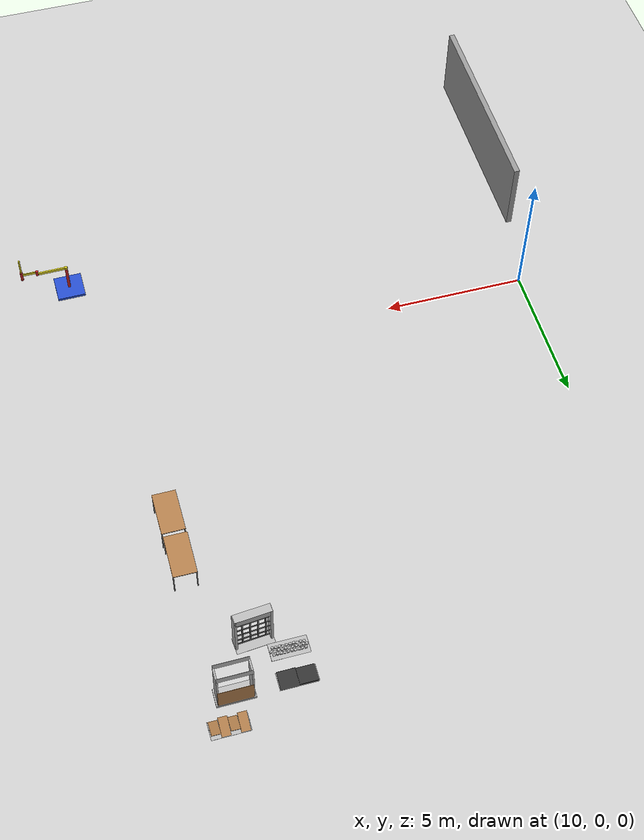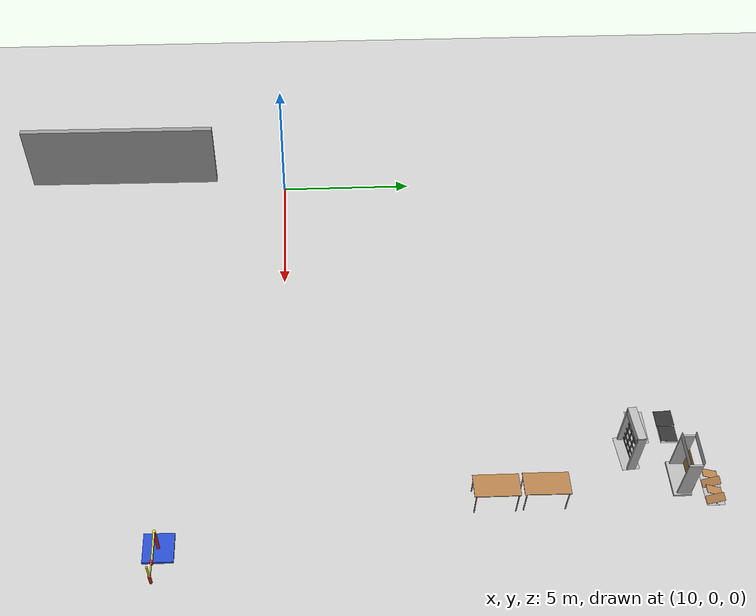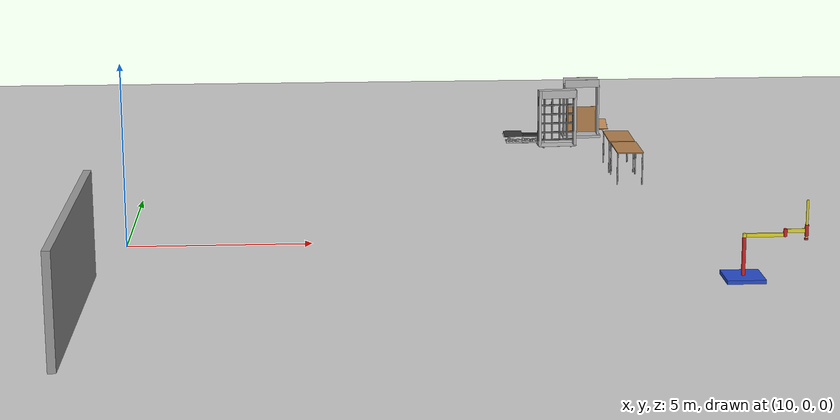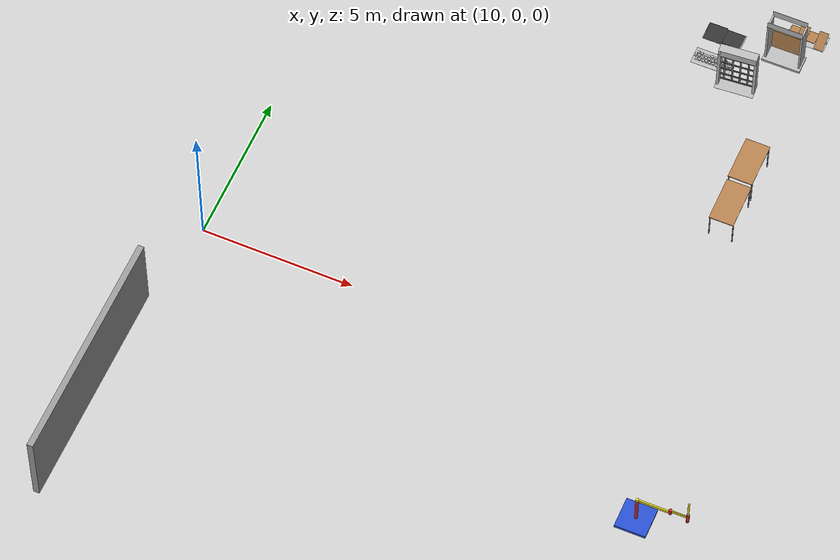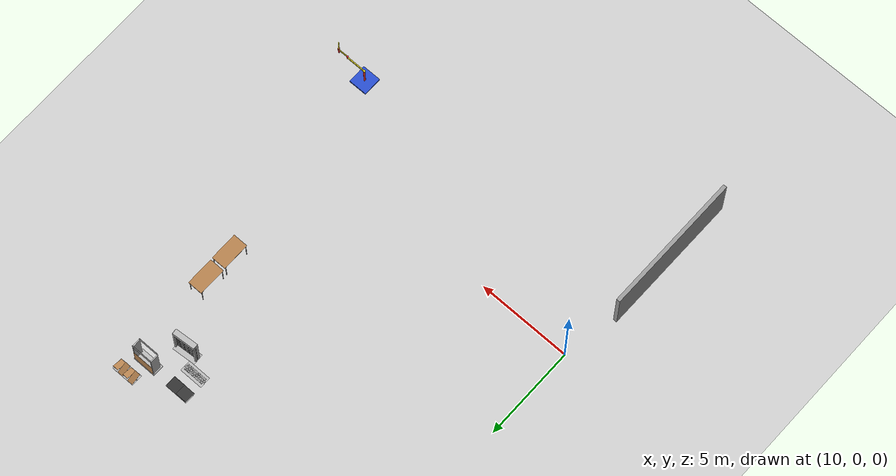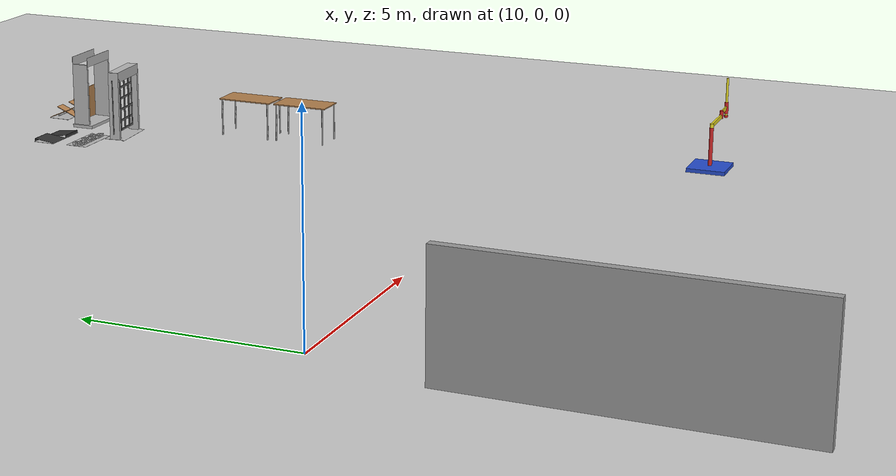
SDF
<sdf version="1.4">
 <world name="default">
  <light name="sun" type="directional">
   <pose>0 0 10 0 -0 0</pose>
   <diffuse>0.8 0.8 0.8 1</diffuse>
   <specular>0.2 0.2 0.2 1</specular>
   <attenuation>
    <range>1000</range>
    <constant>0.9</constant>
    <linear>0.01</linear>
    <quadratic>0.001</quadratic>
   </attenuation>
   <direction>-0.5 0.1 -0.9</direction>
  </light>
  <model name="ground_plane">
   <static>1</static>
   <link name="link">
    <collision name="collision">
     <geometry><plane><normal>0 0 1</normal><size>100 100</size></plane></geometry>
     <surface><friction><ode><mu>100</mu><mu2>50</mu2></ode></friction></surface>
    </collision>
    <visual name="visual">
     <cast_shadows>0</cast_shadows>
     <geometry><plane><normal>0 0 1</normal><size>100 100</size></plane></geometry>
     <material>
      <script><uri>file://media/materials/scripts/gazebo.material</uri><name>Gazebo/Grey</name></script>
     </material>
    </visual>
    <velocity_decay><linear>0</linear><angular>0</angular></velocity_decay>
   </link>
  </model>
  <physics type="ode">
   <max_step_size>0.001</max_step_size>
   <real_time_factor>1</real_time_factor>
   <real_time_update_rate>1000</real_time_update_rate>
   <gravity>0 0 -9.8</gravity>
  </physics>
  <scene><ambient>0.4 0.4 0.4 1</ambient><background>0.7 0.7 0.7 1</background><shadows>1</shadows></scene>
  <spherical_coordinates>
   <surface_model>EARTH_WGS84</surface_model>
   <latitude_deg>0</latitude_deg>
   <longitude_deg>0</longitude_deg>
   <elevation>0</elevation>
   <heading_deg>0</heading_deg>
  </spherical_coordinates>
  <model name="grey_wall">
   <static>1</static>
   <link name="link">
    <pose>0 0 1.4 0 -0 0</pose>
    <collision name="collision"><geometry><box><size>7.5 0.2 2.8</size></box></geometry></collision>
    <visual name="visual">
     <cast_shadows>0</cast_shadows>
     <geometry><box><size>7.5 0.2 2.8</size></box></geometry>
     <material>
      <script>
       <uri>model://grey_wall/materials/scripts</uri>
       <uri>model://grey_wall/materials/textures</uri>
       <name>vrc/grey_wall</name>
      </script>
     </material>
    </visual>
    <velocity_decay><linear>0</linear><angular>0</angular></velocity_decay>
   </link>
   <pose>9.36447 -6.53474 0 0 0 -1.57522</pose>
  </model>
  <model name="table">
   <static>1</static>
   <link name="link">
    <collision name="surface">
     <pose>0 0 1 0 -0 0</pose>
     <geometry><box><size>1.5 0.8 0.03</size></box></geometry>
     <surface><friction><ode><mu>0.6</mu><mu2>0.6</mu2></ode></friction></surface>
    </collision>
    <visual name="visual1">
     <pose>0 0 1 0 -0 0</pose>
     <geometry><box><size>1.5 0.8 0.03</size></box></geometry>
     <material>
      <script><uri>file://media/materials/scripts/gazebo.material</uri><name>Gazebo/Wood</name></script>
     </material>
    </visual>
    <collision name="front_left_leg">
     <pose>0.68 0.38 0.5 0 -0 0</pose>
     <geometry><cylinder><radius>0.02</radius><length>1</length></cylinder></geometry>
    </collision>
    <visual name="front_left_leg">
     <pose>0.68 0.38 0.5 0 -0 0</pose>
     <geometry><cylinder><radius>0.02</radius><length>1</length></cylinder></geometry>
     <material>
      <script><uri>file://media/materials/scripts/gazebo.material</uri><name>Gazebo/Grey</name></script>
     </material>
    </visual>
    <collision name="front_right_leg">
     <pose>0.68 -0.38 0.5 0 -0 0</pose>
     <geometry><cylinder><radius>0.02</radius><length>1</length></cylinder></geometry>
    </collision>
    <visual name="front_right_leg">
     <pose>0.68 -0.38 0.5 0 -0 0</pose>
     <geometry><cylinder><radius>0.02</radius><length>1</length></cylinder></geometry>
     <material>
      <script><uri>file://media/materials/scripts/gazebo.material</uri><name>Gazebo/Grey</name></script>
     </material>
    </visual>
    <collision name="back_right_leg">
     <pose>-0.68 -0.38 0.5 0 -0 0</pose>
     <geometry><cylinder><radius>0.02</radius><length>1</length></cylinder></geometry>
    </collision>
    <visual name="back_right_leg">
     <pose>-0.68 -0.38 0.5 0 -0 0</pose>
     <geometry><cylinder><radius>0.02</radius><length>1</length></cylinder></geometry>
     <material>
      <script><uri>file://media/materials/scripts/gazebo.material</uri><name>Gazebo/Grey</name></script>
     </material>
    </visual>
    <collision name="back_left_leg">
     <pose>-0.68 0.38 0.5 0 -0 0</pose>
     <geometry><cylinder><radius>0.02</radius><length>1</length></cylinder></geometry>
    </collision>
    <visual name="back_left_leg">
     <pose>-0.68 0.38 0.5 0 -0 0</pose>
     <geometry><cylinder><radius>0.02</radius><length>1</length></cylinder></geometry>
     <material>
      <script><uri>file://media/materials/scripts/gazebo.material</uri><name>Gazebo/Grey</name></script>
     </material>
    </visual>
    <velocity_decay><linear>0</linear><angular>0</angular></velocity_decay>
   </link>
   <pose>24.6223 6.79371 0 0 0 -1.56769</pose>
  </model>
  <model name="table_1">
   <static>1</static>
   <link name="link">
    <collision name="surface">
     <pose>0 0 1 0 -0 0</pose>
     <geometry><box><size>1.5 0.8 0.03</size></box></geometry>
     <surface><friction><ode><mu>0.6</mu><mu2>0.6</mu2></ode></friction></surface>
    </collision>
    <visual name="visual1">
     <pose>0 0 1 0 -0 0</pose>
     <geometry><box><size>1.5 0.8 0.03</size></box></geometry>
     <material>
      <script><uri>file://media/materials/scripts/gazebo.material</uri><name>Gazebo/Wood</name></script>
     </material>
    </visual>
    <collision name="front_left_leg">
     <pose>0.68 0.38 0.5 0 -0 0</pose>
     <geometry><cylinder><radius>0.02</radius><length>1</length></cylinder></geometry>
    </collision>
    <visual name="front_left_leg">
     <pose>0.68 0.38 0.5 0 -0 0</pose>
     <geometry><cylinder><radius>0.02</radius><length>1</length></cylinder></geometry>
     <material>
      <script><uri>file://media/materials/scripts/gazebo.material</uri><name>Gazebo/Grey</name></script>
     </material>
    </visual>
    <collision name="front_right_leg">
     <pose>0.68 -0.38 0.5 0 -0 0</pose>
     <geometry><cylinder><radius>0.02</radius><length>1</length></cylinder></geometry>
    </collision>
    <visual name="front_right_leg">
     <pose>0.68 -0.38 0.5 0 -0 0</pose>
     <geometry><cylinder><radius>0.02</radius><length>1</length></cylinder></geometry>
     <material>
      <script><uri>file://media/materials/scripts/gazebo.material</uri><name>Gazebo/Grey</name></script>
     </material>
    </visual>
    <collision name="back_right_leg">
     <pose>-0.68 -0.38 0.5 0 -0 0</pose>
     <geometry><cylinder><radius>0.02</radius><length>1</length></cylinder></geometry>
    </collision>
    <visual name="back_right_leg">
     <pose>-0.68 -0.38 0.5 0 -0 0</pose>
     <geometry><cylinder><radius>0.02</radius><length>1</length></cylinder></geometry>
     <material>
      <script><uri>file://media/materials/scripts/gazebo.material</uri><name>Gazebo/Grey</name></script>
     </material>
    </visual>
    <collision name="back_left_leg">
     <pose>-0.68 0.38 0.5 0 -0 0</pose>
     <geometry><cylinder><radius>0.02</radius><length>1</length></cylinder></geometry>
    </collision>
    <visual name="back_left_leg">
     <pose>-0.68 0.38 0.5 0 -0 0</pose>
     <geometry><cylinder><radius>0.02</radius><length>1</length></cylinder></geometry>
     <material>
      <script><uri>file://media/materials/scripts/gazebo.material</uri><name>Gazebo/Grey</name></script>
     </material>
    </visual>
    <velocity_decay><linear>0</linear><angular>0</angular></velocity_decay>
   </link>
   <pose>24.6027 8.40542 0 0 0 -1.57795</pose>
  </model>
  <model name="frc2016_chevaldefrise">
   <link name="base">
    <inertial>
     <mass>10</mass>
     <pose>0 0 0.15672 0 -0 0</pose>
     <inertia><ixx>0.380221</ixx><ixy>0</ixy><ixz>0</ixz><iyy>1.43365</iyy><iyz>0</iyz><izz>1.64745</izz></inertia>
    </inertial>
    <visual name="platform">
     <pose>0 0 0.06968 0 -0 0</pose>
     <geometry><box><size>1.27 0.5969 0.003175</size></box></geometry>
    </visual>
    <collision name="platform">
     <pose>0 0 0.06968 0 -0 0</pose>
     <geometry><box><size>1.27 0.5969 0.003175</size></box></geometry>
    </collision>
    <visual name="bar">
     <pose>0 0 0.16855 0 1.5707 0</pose>
     <geometry><cylinder><radius>0.02108</radius><length>1.273</length></cylinder></geometry>
    </visual>
    <collision name="bar">
     <pose>0 0 0.16855 0 1.5707 0</pose>
     <geometry><cylinder><radius>0.02108</radius><length>1.27</length></cylinder></geometry>
    </collision>
    <visual name="castor1">
     <pose>-0.45653 -0.16581 0.03175 0 -0 0</pose>
     <geometry><sphere><radius>0.03175</radius></sphere></geometry>
    </visual>
    <collision name="castor1">
     <pose>-0.45653 -0.16581 0.03175 0 -0 0</pose>
     <geometry><sphere><radius>0.03175</radius></sphere></geometry>
    </collision>
    <visual name="castor2">
     <pose>-0.27855 0.21408 0.03175 0 -0 0</pose>
     <geometry><sphere><radius>0.03175</radius></sphere></geometry>
    </visual>
    <collision name="castor2">
     <pose>-0.27855 0.21408 0.03175 0 -0 0</pose>
     <geometry><sphere><radius>0.03175</radius></sphere></geometry>
    </collision>
    <visual name="castor3">
     <pose>0.28191 0.21419 0.03175 0 -0 0</pose>
     <geometry><sphere><radius>0.03175</radius></sphere></geometry>
    </visual>
    <collision name="castor3">
     <pose>0.28191 0.21419 0.03175 0 -0 0</pose>
     <geometry><sphere><radius>0.03175</radius></sphere></geometry>
    </collision>
    <visual name="castor4">
     <pose>0.45965 -0.16602 0.03175 0 -0 0</pose>
     <geometry><sphere><radius>0.03175</radius></sphere></geometry>
    </visual>
    <collision name="castor4">
     <pose>0.45965 -0.16602 0.03175 0 -0 0</pose>
     <geometry><sphere><radius>0.03175</radius></sphere></geometry>
    </collision>
    <velocity_decay><linear>0</linear><angular>0</angular></velocity_decay>
   </link>
   <link name="slant1">
    <pose>-0.4572 0.01307 0.1997 -0.39732 0 0</pose>
    <inertial>
     <pose>0 0.1 0 0 -0 0</pose>
     <mass>2</mass>
     <inertia>
      <ixx>0.0606857</ixx>
      <ixy>0</ixy>
      <ixz>0</ixz>
      <iyy>0.0148723</iyy>
      <iyz>0</iyz>
      <izz>0.0755042</izz>
     </inertia>
    </inertial>
    <visual name="visual">
     <geometry><box><size>0.29845 0.593285 0.0127</size></box></geometry>
     <material><script><name>Gazebo/WoodFloor</name><uri>__default__</uri></script></material>
    </visual>
    <collision name="collision"><geometry><box><size>0.29845 0.593285 0.0127</size></box></geometry></collision>
    <velocity_decay><linear>0</linear><angular>0</angular></velocity_decay>
   </link>
   <link name="slant2">
    <pose>-0.1524 -0.01307 0.1997 0.39732 -0 0</pose>
    <inertial>
     <mass>2</mass>
     <pose>0 -0.1 0 0 -0 0</pose>
     <inertia>
      <ixx>0.0606857</ixx>
      <ixy>0</ixy>
      <ixz>0</ixz>
      <iyy>0.0148723</iyy>
      <iyz>0</iyz>
      <izz>0.0755042</izz>
     </inertia>
    </inertial>
    <visual name="visual">
     <geometry><box><size>0.29845 0.593285 0.0127</size></box></geometry>
     <material><script><name>Gazebo/WoodFloor</name><uri>__default__</uri></script></material>
    </visual>
    <collision name="collision"><geometry><box><size>0.29845 0.593285 0.0127</size></box></geometry></collision>
    <velocity_decay><linear>0</linear><angular>0</angular></velocity_decay>
   </link>
   <link name="slant3">
    <pose>0.1524 0.01307 0.1997 -0.39732 0 0</pose>
    <inertial>
     <pose>0 0.1 0 0 -0 0</pose>
     <mass>2</mass>
     <inertia>
      <ixx>0.0606857</ixx>
      <ixy>0</ixy>
      <ixz>0</ixz>
      <iyy>0.0148723</iyy>
      <iyz>0</iyz>
      <izz>0.0755042</izz>
     </inertia>
    </inertial>
    <visual name="visual">
     <geometry><box><size>0.29845 0.593285 0.0127</size></box></geometry>
     <material><script><name>Gazebo/WoodFloor</name><uri>__default__</uri></script></material>
    </visual>
    <collision name="collision"><geometry><box><size>0.29845 0.593285 0.0127</size></box></geometry></collision>
    <velocity_decay><linear>0</linear><angular>0</angular></velocity_decay>
   </link>
   <link name="slant4">
    <pose>0.4572 -0.01307 0.1997 0.39732 -0 0</pose>
    <inertial>
     <pose>0 -0.1 0 0 -0 0</pose>
     <mass>2</mass>
     <inertia>
      <ixx>0.0606857</ixx>
      <ixy>0</ixy>
      <ixz>0</ixz>
      <iyy>0.0148723</iyy>
      <iyz>0</iyz>
      <izz>0.0755042</izz>
     </inertia>
    </inertial>
    <visual name="visual">
     <geometry><box><size>0.29845 0.593285 0.0127</size></box></geometry>
     <material><script><name>Gazebo/WoodFloor</name><uri>__default__</uri></script></material>
    </visual>
    <collision name="collision"><geometry><box><size>0.29845 0.593285 0.0127</size></box></geometry></collision>
    <velocity_decay><linear>0</linear><angular>0</angular></velocity_decay>
   </link>
   <joint name="slant1_joint" type="revolute">
    <parent>base</parent>
    <child>slant1</child>
    <axis><xyz>1 0 0</xyz><limit><lower>0</lower><upper>1.5707</upper></limit></axis>
   </joint>
   <joint name="slant2_joint" type="revolute">
    <parent>base</parent>
    <child>slant2</child>
    <axis><xyz>1 0 0</xyz><limit><lower>-1.5707</lower><upper>0</upper></limit></axis>
   </joint>
   <joint name="slant3_joint" type="revolute">
    <parent>base</parent>
    <child>slant3</child>
    <axis><xyz>1 0 0</xyz><limit><lower>0</lower><upper>1.5707</upper></limit></axis>
   </joint>
   <joint name="slant4_joint" type="revolute">
    <parent>base</parent>
    <child>slant4</child>
    <axis><xyz>1 0 0</xyz><limit><lower>-1.5707</lower><upper>0</upper></limit></axis>
   </joint>
   <pose>24.4049 14 -0 0 -0 0</pose>
   <static>0</static>
  </model>
  <model name="frc2016_drawbridge">
   <link name="base">
    <inertial>
     <mass>10</mass>
     <pose>0 0 1 0 -0 0</pose>
     <inertia><ixx>3.64907</ixx><ixy>0</ixy><ixz>0</ixz><iyy>4.67075</iyy><iyz>0</iyz><izz>1.66649</izz></inertia>
    </inertial>
    <visual name="platform">
     <pose>0 0 0.0425 0 -0 0</pose>
     <geometry><box><size>1.27 0.5969 0.085</size></box></geometry>
    </visual>
    <collision name="platform">
     <pose>0 0 0.0425 0 -0 0</pose>
     <geometry><box><size>1.27 0.5969 0.085</size></box></geometry>
    </collision>
    <visual name="right_wall">
     <pose>0.55879 0.04444 0.889 0 -0 0</pose>
     <geometry><box><size>0.05715 0.45698 1.77165</size></box></geometry>
    </visual>
    <collision name="right_wall">
     <pose>0.55879 0.04444 0.889 0 -0 0</pose>
     <geometry><box><size>0.05715 0.45698 1.77165</size></box></geometry>
    </collision>
    <visual name="left_wall">
     <pose>-0.55879 0.04444 0.889 0 -0 0</pose>
     <geometry><box><size>0.05715 0.45698 1.77165</size></box></geometry>
    </visual>
    <collision name="left_wall">
     <pose>-0.55879 0.04444 0.889 0 -0 0</pose>
     <geometry><box><size>0.05715 0.45698 1.77165</size></box></geometry>
    </collision>
    <visual name="front_upper_wall">
     <pose>0 0.27611 1.84286 0 -0 0</pose>
     <geometry><box><size>1.1557 0.006347 0.254</size></box></geometry>
    </visual>
    <collision name="front_upper_wall">
     <pose>0 0.27611 1.84286 0 -0 0</pose>
     <geometry><box><size>1.1557 0.006347 0.254</size></box></geometry>
    </collision>
    <visual name="back_upper_wall">
     <pose>0 -0.18722 1.84286 0 -0 0</pose>
     <geometry><box><size>1.1557 0.006347 0.254</size></box></geometry>
    </visual>
    <collision name="back_upper_wall">
     <pose>0 -0.18722 1.84286 0 -0 0</pose>
     <geometry><box><size>1.1557 0.006347 0.254</size></box></geometry>
    </collision>
    <velocity_decay><linear>0</linear><angular>0</angular></velocity_decay>
   </link>
   <link name="bridge">
    <pose>0 0.28245 0.50577 0 -0 0</pose>
    <inertial>
     <mass>2</mass>
     <pose>0 -0.28245 -0.50577 0 -0 0</pose>
     <inertia>
      <ixx>0.139361</ixx>
      <ixy>0</ixy>
      <ixz>0</ixz>
      <iyy>0.357088</iyy>
      <iyz>0</iyz>
      <izz>0.217741</izz>
     </inertia>
    </inertial>
    <visual name="visual">
     <geometry><box><size>1.14298 0.006347 0.9144</size></box></geometry>
     <material><script><name>Gazebo/WoodFloor</name><uri>__default__</uri></script></material>
    </visual>
    <collision name="collision"><geometry><box><size>1.14298 0.006347 0.9144</size></box></geometry></collision>
    <velocity_decay><linear>0</linear><angular>0</angular></velocity_decay>
   </link>
   <joint name="bridge_joint" type="revolute">
    <pose>0 0 -0.4172 0 -0 0</pose>
    <parent>base</parent>
    <child>bridge</child>
    <axis><xyz>1 0 0</xyz><limit><lower>-2</lower><upper>0</upper></limit></axis>
   </joint>
   <pose>23.9997 12.9993 0 0 -0 0.002151</pose>
   <static>0</static>
  </model>
  <model name="frc2016_portcullis">
   <link name="base">
    <inertial>
     <mass>50</mass>
     <pose>0 0 1.02941 0 -0 0</pose>
     <inertia><ixx>3.81711</ixx><ixy>0</ixy><ixz>0</ixz><iyy>4.87698</iyy><iyz>0</iyz><izz>1.6283</izz></inertia>
    </inertial>
    <visual name="platform">
     <pose>0 0 0.07284 0 -0 0</pose>
     <geometry><box><size>1.27 0.5842 0.003175</size></box></geometry>
    </visual>
    <collision name="platform">
     <pose>0 0 0.07284 0 -0 0</pose>
     <geometry><box><size>1.27 0.5842 0.003175</size></box></geometry>
    </collision>
    <visual name="left_column">
     <pose>0.59284 0 0.99042 0 -0 0</pose>
     <geometry><box><size>0.08375 0.28575 1.83198</size></box></geometry>
    </visual>
    <collision name="left_column">
     <pose>0.59284 0 0.99042 0 -0 0</pose>
     <geometry><box><size>0.08375 0.28575 1.83198</size></box></geometry>
    </collision>
    <visual name="right_column">
     <pose>-0.57759 0 0.99042 0 -0 0</pose>
     <geometry><box><size>0.08375 0.28575 1.83198</size></box></geometry>
    </visual>
    <collision name="right_column">
     <pose>-0.57759 0 0.99042 0 -0 0</pose>
     <geometry><box><size>0.08375 0.28575 1.83198</size></box></geometry>
    </collision>
    <visual name="top">
     <pose>-0.00034 0 1.77722 0 -0 0</pose>
     <geometry><box><size>1.22962 0.28575 0.26657</size></box></geometry>
    </visual>
    <collision name="top">
     <pose>-0.00034 0 1.77722 0 -0 0</pose>
     <geometry><box><size>1.22962 0.28575 0.26657</size></box></geometry>
    </collision>
    <visual name="castor1">
     <pose>-0.45651 -0.16234 0.03272 0 -0 0</pose>
     <geometry><sphere><radius>0.03272</radius></sphere></geometry>
    </visual>
    <collision name="castor1">
     <pose>-0.45651 -0.16234 0.03272 0 -0 0</pose>
     <geometry><sphere><radius>0.03272</radius></sphere></geometry>
    </collision>
    <visual name="castor2">
     <pose>-0.27883 0.21836 0.03272 0 -0 0</pose>
     <geometry><sphere><radius>0.03272</radius></sphere></geometry>
    </visual>
    <collision name="castor2">
     <pose>-0.27883 0.21836 0.03272 0 -0 0</pose>
     <geometry><sphere><radius>0.03272</radius></sphere></geometry>
    </collision>
    <visual name="castor3">
     <pose>0.28083 0.21906 0.03272 0 -0 0</pose>
     <geometry><sphere><radius>0.03272</radius></sphere></geometry>
    </visual>
    <collision name="castor3">
     <pose>0.28083 0.21906 0.03272 0 -0 0</pose>
     <geometry><sphere><radius>0.03272</radius></sphere></geometry>
    </collision>
    <visual name="castor4">
     <pose>0.45871 -0.16186 0.03272 0 -0 0</pose>
     <geometry><sphere><radius>0.03272</radius></sphere></geometry>
    </visual>
    <collision name="castor4">
     <pose>0.45871 -0.16186 0.03272 0 -0 0</pose>
     <geometry><sphere><radius>0.03272</radius></sphere></geometry>
    </collision>
    <velocity_decay><linear>0</linear><angular>0</angular></velocity_decay>
   </link>
   <link name="gate">
    <pose>-0.0287 0.02885 0.93327 0 -0 0</pose>
    <inertial>
     <mass>2</mass>
     <inertia><ixx>3.81711</ixx><ixy>0</ixy><ixz>0</ixz><iyy>4.87698</iyy><iyz>0</iyz><izz>1.6283</izz></inertia>
    </inertial>
    <collision name="collision"><geometry><box><size>1.1938 0.02496 1.45732</size></box></geometry></collision>
    <visual name="horz_1">
     <pose>0 0 -0.70326 0 -0 0</pose>
     <geometry><box><size>1.1938 0.02496 0.0508</size></box></geometry>
     <material><ambient>0.4 0.4 0.4 1</ambient><diffuse>0.4 0.4 0.4 1</diffuse></material>
    </visual>
    <visual name="horz_2">
     <pose>0 0 -0.44926 0 -0 0</pose>
     <geometry><box><size>1.1938 0.02496 0.0508</size></box></geometry>
     <material><ambient>0.4 0.4 0.4 1</ambient><diffuse>0.4 0.4 0.4 1</diffuse></material>
    </visual>
    <visual name="horz_3">
     <pose>0 0 -0.14517 0 -0 0</pose>
     <geometry><box><size>1.1938 0.02496 0.0508</size></box></geometry>
     <material><ambient>0.4 0.4 0.4 1</ambient><diffuse>0.4 0.4 0.4 1</diffuse></material>
    </visual>
    <visual name="horz_4">
     <pose>0 0 0.16034 0 -0 0</pose>
     <geometry><box><size>1.1938 0.02496 0.0508</size></box></geometry>
     <material><ambient>0.4 0.4 0.4 1</ambient><diffuse>0.4 0.4 0.4 1</diffuse></material>
    </visual>
    <visual name="horz_5">
     <pose>0 0 0.46514 0 -0 0</pose>
     <geometry><box><size>1.1938 0.02496 0.0508</size></box></geometry>
     <material><ambient>0.4 0.4 0.4 1</ambient><diffuse>0.4 0.4 0.4 1</diffuse></material>
    </visual>
    <visual name="horz_6">
     <pose>0 0 0.72994 0 -0 0</pose>
     <geometry><box><size>1.1938 0.02496 0.0508</size></box></geometry>
     <material><ambient>0.4 0.4 0.4 1</ambient><diffuse>0.4 0.4 0.4 1</diffuse></material>
    </visual>
    <visual name="vert_1">
     <pose>-0.58448 0 0 0 -0 0</pose>
     <geometry><box><size>0.02495 0.02496 1.45732</size></box></geometry>
     <material><ambient>0.4 0.4 0.4 1</ambient><diffuse>0.4 0.4 0.4 1</diffuse></material>
    </visual>
    <visual name="vert_2">
     <pose>-0.38128 0 0 0 -0 0</pose>
     <geometry><box><size>0.0508 0.02496 1.45732</size></box></geometry>
     <material><ambient>0.4 0.4 0.4 1</ambient><diffuse>0.4 0.4 0.4 1</diffuse></material>
    </visual>
    <visual name="vert_3">
     <pose>-0.12728 0 0 0 -0 0</pose>
     <geometry><box><size>0.0508 0.02496 1.45732</size></box></geometry>
     <material><ambient>0.4 0.4 0.4 1</ambient><diffuse>0.4 0.4 0.4 1</diffuse></material>
    </visual>
    <visual name="vert_4">
     <pose>0.12672 0 0 0 -0 0</pose>
     <geometry><box><size>0.0508 0.02496 1.45732</size></box></geometry>
     <material><ambient>0.4 0.4 0.4 1</ambient><diffuse>0.4 0.4 0.4 1</diffuse></material>
    </visual>
    <visual name="vert_5">
     <pose>0.38072 0 0 0 -0 0</pose>
     <geometry><box><size>0.0508 0.02496 1.45732</size></box></geometry>
     <material><ambient>0.4 0.4 0.4 1</ambient><diffuse>0.4 0.4 0.4 1</diffuse></material>
    </visual>
    <visual name="vert_6">
     <pose>0.58392 0 0 0 -0 0</pose>
     <geometry><box><size>0.02495 0.02496 1.45732</size></box></geometry>
     <material><ambient>0.4 0.4 0.4 1</ambient><diffuse>0.4 0.4 0.4 1</diffuse></material>
    </visual>
    <velocity_decay><linear>0</linear><angular>0</angular></velocity_decay>
   </link>
   <joint name="joint" type="prismatic">
    <parent>base</parent>
    <child>gate</child>
    <axis><xyz>0 0 1</xyz><limit><lower>0</lower><upper>1</upper></limit></axis>
   </joint>
   <pose>23.0001 11.4465 0 0 -0 0.080386</pose>
   <static>0</static>
  </model>
  <model name="frc2016_ramparts">
   <static>1</static>
   <link name="link">
    <visual name="platform">
     <pose>0 0 0.06967 0 -0 0</pose>
     <geometry><box><size>1.27 0.5969 0.003175</size></box></geometry>
    </visual>
    <collision name="platform">
     <pose>0 0 0.06967 0 -0 0</pose>
     <geometry><box><size>1.27 0.5969 0.003175</size></box></geometry>
    </collision>
    <visual name="ramp1">
     <pose>0.30472 0.00588 0.1109 -0.13 0 0</pose>
     <geometry><box><size>0.60957 0.588891 0.00462</size></box></geometry>
     <material><ambient>0.2 0.2 0.2 1</ambient><diffuse>0.2 0.2 0.2 1</diffuse></material>
    </visual>
    <collision name="ramp1">
     <pose>0.30472 0.00588 0.1109 -0.13 0 0</pose>
     <geometry><box><size>0.60957 0.588891 0.00462</size></box></geometry>
    </collision>
    <visual name="up1">
     <pose>0.30472 -0.28806 0.11072 0 -0 0</pose>
     <geometry><box><size>0.60957 0.00462 0.07872</size></box></geometry>
     <material><ambient>0.2 0.2 0.2 1</ambient><diffuse>0.2 0.2 0.2 1</diffuse></material>
    </visual>
    <collision name="up1">
     <pose>0.30472 -0.28806 0.11072 0 -0 0</pose>
     <geometry><box><size>0.60957 0.00462 0.07872</size></box></geometry>
    </collision>
    <visual name="ramp2">
     <pose>-0.30472 -0.00619 0.1109 0.13 -0 0</pose>
     <geometry><box><size>0.60957 0.588891 0.00462</size></box></geometry>
     <material><ambient>0.2 0.2 0.2 1</ambient><diffuse>0.2 0.2 0.2 1</diffuse></material>
    </visual>
    <collision name="ramp2">
     <pose>-0.30472 -0.00619 0.1109 0.13 -0 0</pose>
     <geometry><box><size>0.60957 0.588891 0.00462</size></box></geometry>
    </collision>
    <visual name="up2">
     <pose>-0.30472 0.28806 0.11072 0 -0 0</pose>
     <geometry><box><size>0.60957 0.00462 0.07872</size></box></geometry>
     <material><ambient>0.2 0.2 0.2 1</ambient><diffuse>0.2 0.2 0.2 1</diffuse></material>
    </visual>
    <collision name="up2">
     <pose>-0.30472 0.28806 0.11072 0 -0 0</pose>
     <geometry><box><size>0.60957 0.00462 0.07872</size></box></geometry>
    </collision>
    <velocity_decay><linear>0</linear><angular>0</angular></velocity_decay>
   </link>
   <pose>22 13 0 0 -0 0</pose>
  </model>
  <model name="frc2016_roughterrain">
   <static>1</static>
   <link name="link">
    <visual name="platform">
     <pose>0 0 0.08269 0 -0 0</pose>
     <geometry><box><size>1.27 0.5969 0.003175</size></box></geometry>
    </visual>
    <collision name="platform">
     <pose>0 0 0.08269 0 -0 0</pose>
     <geometry><box><size>1.27 0.5969 0.003175</size></box></geometry>
    </collision>
    <visual name="row1_block1_sm">
     <pose>0.51435 0.1143 0.09698 0 -0 0</pose>
     <geometry><box><size>0.0762 0.0762 0.0254</size></box></geometry>
    </visual>
    <collision name="row1_block1_sm">
     <pose>0.51435 0.1143 0.09698 0 -0 0</pose>
     <geometry><box><size>0.0762 0.0762 0.0254</size></box></geometry>
    </collision>
    <visual name="row1_block2_lg">
     <pose>0.40005 0.1143 0.12238 0 -0 0</pose>
     <geometry><box><size>0.0762 0.0762 0.0762</size></box></geometry>
    </visual>
    <collision name="row1_block2_lg">
     <pose>0.40005 0.1143 0.12238 0 -0 0</pose>
     <geometry><box><size>0.0762 0.0762 0.0762</size></box></geometry>
    </collision>
    <visual name="row1_block3_md">
     <pose>0.28575 0.1143 0.10968 0 -0 0</pose>
     <geometry><box><size>0.0762 0.0762 0.0508</size></box></geometry>
    </visual>
    <collision name="row1_block3_md">
     <pose>0.28575 0.1143 0.10968 0 -0 0</pose>
     <geometry><box><size>0.0762 0.0762 0.0508</size></box></geometry>
    </collision>
    <visual name="row1_block4_sm">
     <pose>0.17145 0.1143 0.09698 0 -0 0</pose>
     <geometry><box><size>0.0762 0.0762 0.0254</size></box></geometry>
    </visual>
    <collision name="row1_block4_sm">
     <pose>0.17145 0.1143 0.09698 0 -0 0</pose>
     <geometry><box><size>0.0762 0.0762 0.0254</size></box></geometry>
    </collision>
    <visual name="row1_block5_md">
     <pose>0.05715 0.1143 0.10968 0 -0 0</pose>
     <geometry><box><size>0.0762 0.0762 0.0508</size></box></geometry>
    </visual>
    <collision name="row1_block5_md">
     <pose>0.05715 0.1143 0.10968 0 -0 0</pose>
     <geometry><box><size>0.0762 0.0762 0.0508</size></box></geometry>
    </collision>
    <visual name="row1_block6_lg">
     <pose>-0.05715 0.1143 0.12238 0 -0 0</pose>
     <geometry><box><size>0.0762 0.0762 0.0762</size></box></geometry>
    </visual>
    <collision name="row1_block6_lg">
     <pose>-0.05715 0.1143 0.12238 0 -0 0</pose>
     <geometry><box><size>0.0762 0.0762 0.0762</size></box></geometry>
    </collision>
    <visual name="row1_block7_sm">
     <pose>-0.17145 0.1143 0.09698 0 -0 0</pose>
     <geometry><box><size>0.0762 0.0762 0.0254</size></box></geometry>
    </visual>
    <collision name="row1_block7_sm">
     <pose>-0.17145 0.1143 0.09698 0 -0 0</pose>
     <geometry><box><size>0.0762 0.0762 0.0254</size></box></geometry>
    </collision>
    <visual name="row1_block8_sm">
     <pose>-0.28575 0.1143 0.09698 0 -0 0</pose>
     <geometry><box><size>0.0762 0.0762 0.0254</size></box></geometry>
    </visual>
    <collision name="row1_block8_sm">
     <pose>-0.28575 0.1143 0.09698 0 -0 0</pose>
     <geometry><box><size>0.0762 0.0762 0.0254</size></box></geometry>
    </collision>
    <visual name="row1_block9_md">
     <pose>-0.40005 0.1143 0.10968 0 -0 0</pose>
     <geometry><box><size>0.0762 0.0762 0.0508</size></box></geometry>
    </visual>
    <collision name="row1_block9_md">
     <pose>-0.40005 0.1143 0.10968 0 -0 0</pose>
     <geometry><box><size>0.0762 0.0762 0.0508</size></box></geometry>
    </collision>
    <visual name="row1_block10_lg">
     <pose>-0.51435 0.1143 0.12238 0 -0 0</pose>
     <geometry><box><size>0.0762 0.0762 0.0762</size></box></geometry>
    </visual>
    <collision name="row1_block10_lg">
     <pose>-0.51435 0.1143 0.12238 0 -0 0</pose>
     <geometry><box><size>0.0762 0.0762 0.0762</size></box></geometry>
    </collision>
    <visual name="row2_block1_md">
     <pose>0.5715 0 0.10968 0 -0 0</pose>
     <geometry><box><size>0.0762 0.0762 0.0508</size></box></geometry>
    </visual>
    <collision name="row2_block1_md">
     <pose>0.5715 0 0.10968 0 -0 0</pose>
     <geometry><box><size>0.0762 0.0762 0.0508</size></box></geometry>
    </collision>
    <visual name="row2_block2_sm">
     <pose>0.4572 0 0.09698 0 -0 0</pose>
     <geometry><box><size>0.0762 0.0762 0.0254</size></box></geometry>
    </visual>
    <collision name="row2_block2_sm">
     <pose>0.4572 0 0.09698 0 -0 0</pose>
     <geometry><box><size>0.0762 0.0762 0.0254</size></box></geometry>
    </collision>
    <visual name="row2_block3_lg">
     <pose>0.3429 0 0.12238 0 -0 0</pose>
     <geometry><box><size>0.0762 0.0762 0.0762</size></box></geometry>
    </visual>
    <collision name="row2_block3_lg">
     <pose>0.3429 0 0.12238 0 -0 0</pose>
     <geometry><box><size>0.0762 0.0762 0.0762</size></box></geometry>
    </collision>
    <visual name="row2_block4_md">
     <pose>0.2286 0 0.10968 0 -0 0</pose>
     <geometry><box><size>0.0762 0.0762 0.0508</size></box></geometry>
    </visual>
    <collision name="row2_block4_md">
     <pose>0.2286 0 0.10968 0 -0 0</pose>
     <geometry><box><size>0.0762 0.0762 0.0508</size></box></geometry>
    </collision>
    <visual name="row2_block5_lg">
     <pose>0.1143 0 0.12238 0 -0 0</pose>
     <geometry><box><size>0.0762 0.0762 0.0762</size></box></geometry>
    </visual>
    <collision name="row2_block5_lg">
     <pose>0.1143 0 0.12238 0 -0 0</pose>
     <geometry><box><size>0.0762 0.0762 0.0762</size></box></geometry>
    </collision>
    <visual name="row2_block6_sm">
     <pose>0 0 0.09698 0 -0 0</pose>
     <geometry><box><size>0.0762 0.0762 0.0254</size></box></geometry>
    </visual>
    <collision name="row2_block6_sm">
     <pose>0 0 0.09698 0 -0 0</pose>
     <geometry><box><size>0.0762 0.0762 0.0254</size></box></geometry>
    </collision>
    <visual name="row2_block7_md">
     <pose>-0.1143 0 0.10968 0 -0 0</pose>
     <geometry><box><size>0.0762 0.0762 0.0508</size></box></geometry>
    </visual>
    <collision name="row2_block7_md">
     <pose>-0.1143 0 0.10968 0 -0 0</pose>
     <geometry><box><size>0.0762 0.0762 0.0508</size></box></geometry>
    </collision>
    <visual name="row2_block8_lg">
     <pose>-0.2286 0 0.12238 0 -0 0</pose>
     <geometry><box><size>0.0762 0.0762 0.0762</size></box></geometry>
    </visual>
    <collision name="row2_block8_lg">
     <pose>-0.2286 0 0.12238 0 -0 0</pose>
     <geometry><box><size>0.0762 0.0762 0.0762</size></box></geometry>
    </collision>
    <visual name="row2_block9_sm">
     <pose>-0.3429 0 0.09698 0 -0 0</pose>
     <geometry><box><size>0.0762 0.0762 0.0254</size></box></geometry>
    </visual>
    <collision name="row2_block9_sm">
     <pose>-0.3429 0 0.09698 0 -0 0</pose>
     <geometry><box><size>0.0762 0.0762 0.0254</size></box></geometry>
    </collision>
    <visual name="row2_block10_lg">
     <pose>-0.4572 0 0.12238 0 -0 0</pose>
     <geometry><box><size>0.0762 0.0762 0.0762</size></box></geometry>
    </visual>
    <collision name="row2_block10_lg">
     <pose>-0.4572 0 0.12238 0 -0 0</pose>
     <geometry><box><size>0.0762 0.0762 0.0762</size></box></geometry>
    </collision>
    <visual name="row2_block11_md">
     <pose>-0.5715 0 0.10968 0 -0 0</pose>
     <geometry><box><size>0.0762 0.0762 0.0508</size></box></geometry>
    </visual>
    <collision name="row2_block11_md">
     <pose>-0.5715 0 0.10968 0 -0 0</pose>
     <geometry><box><size>0.0762 0.0762 0.0508</size></box></geometry>
    </collision>
    <visual name="row3_block1_lg">
     <pose>0.51435 -0.1143 0.12238 0 -0 0</pose>
     <geometry><box><size>0.0762 0.0762 0.0762</size></box></geometry>
    </visual>
    <collision name="row3_block1_lg">
     <pose>0.51435 -0.1143 0.12238 0 -0 0</pose>
     <geometry><box><size>0.0762 0.0762 0.0762</size></box></geometry>
    </collision>
    <visual name="row3_block2_md">
     <pose>0.40005 -0.1143 0.10968 0 -0 0</pose>
     <geometry><box><size>0.0762 0.0762 0.0508</size></box></geometry>
    </visual>
    <collision name="row3_block2_md">
     <pose>0.40005 -0.1143 0.10968 0 -0 0</pose>
     <geometry><box><size>0.0762 0.0762 0.0508</size></box></geometry>
    </collision>
    <visual name="row3_block3_lg">
     <pose>0.28575 -0.1143 0.12238 0 -0 0</pose>
     <geometry><box><size>0.0762 0.0762 0.0762</size></box></geometry>
    </visual>
    <collision name="row3_block3_lg">
     <pose>0.28575 -0.1143 0.12238 0 -0 0</pose>
     <geometry><box><size>0.0762 0.0762 0.0762</size></box></geometry>
    </collision>
    <visual name="row3_block4_sm">
     <pose>0.17145 -0.1143 0.09698 0 -0 0</pose>
     <geometry><box><size>0.0762 0.0762 0.0254</size></box></geometry>
    </visual>
    <collision name="row3_block4_sm">
     <pose>0.17145 -0.1143 0.09698 0 -0 0</pose>
     <geometry><box><size>0.0762 0.0762 0.0254</size></box></geometry>
    </collision>
    <visual name="row3_block5_md">
     <pose>0.05715 -0.1143 0.10968 0 -0 0</pose>
     <geometry><box><size>0.0762 0.0762 0.0508</size></box></geometry>
    </visual>
    <collision name="row3_block5_md">
     <pose>0.05715 -0.1143 0.10968 0 -0 0</pose>
     <geometry><box><size>0.0762 0.0762 0.0508</size></box></geometry>
    </collision>
    <visual name="row3_block6_md">
     <pose>-0.05715 -0.1143 0.10968 0 -0 0</pose>
     <geometry><box><size>0.0762 0.0762 0.0508</size></box></geometry>
    </visual>
    <collision name="row3_block6_md">
     <pose>-0.05715 -0.1143 0.10968 0 -0 0</pose>
     <geometry><box><size>0.0762 0.0762 0.0508</size></box></geometry>
    </collision>
    <visual name="row3_block7_lg">
     <pose>-0.17145 -0.1143 0.12238 0 -0 0</pose>
     <geometry><box><size>0.0762 0.0762 0.0762</size></box></geometry>
    </visual>
    <collision name="row3_block7_lg">
     <pose>-0.17145 -0.1143 0.12238 0 -0 0</pose>
     <geometry><box><size>0.0762 0.0762 0.0762</size></box></geometry>
    </collision>
    <visual name="row3_block8_sm">
     <pose>-0.28575 -0.1143 0.09698 0 -0 0</pose>
     <geometry><box><size>0.0762 0.0762 0.0254</size></box></geometry>
    </visual>
    <collision name="row3_block8_sm">
     <pose>-0.28575 -0.1143 0.09698 0 -0 0</pose>
     <geometry><box><size>0.0762 0.0762 0.0254</size></box></geometry>
    </collision>
    <visual name="row3_block9_md">
     <pose>-0.40005 -0.1143 0.10968 0 -0 0</pose>
     <geometry><box><size>0.0762 0.0762 0.0508</size></box></geometry>
    </visual>
    <collision name="row3_block9_md">
     <pose>-0.40005 -0.1143 0.10968 0 -0 0</pose>
     <geometry><box><size>0.0762 0.0762 0.0508</size></box></geometry>
    </collision>
    <visual name="row3_block10_sm">
     <pose>-0.51435 -0.1143 0.09698 0 -0 0</pose>
     <geometry><box><size>0.0762 0.0762 0.0254</size></box></geometry>
    </visual>
    <collision name="row3_block10_sm">
     <pose>-0.51435 -0.1143 0.09698 0 -0 0</pose>
     <geometry><box><size>0.0762 0.0762 0.0254</size></box></geometry>
    </collision>
    <velocity_decay><linear>0</linear><angular>0</angular></velocity_decay>
   </link>
   <pose>22 12 0 0 -0 0</pose>
  </model>
  <model name="simple_arm">
   <link name="arm_base">
    <inertial>
     <pose>0 0 0.00099 0 -0 0</pose>
     <inertia><ixx>1.11</ixx><ixy>0</ixy><ixz>0</ixz><iyy>100.11</iyy><iyz>0</iyz><izz>1.01</izz></inertia>
     <mass>101</mass>
    </inertial>
    <collision name="arm_base_geom">
     <pose>0 0 0.05 0 -0 0</pose>
     <geometry><box><size>1 1 0.1</size></box></geometry>
    </collision>
    <visual name="arm_base_geom_visual">
     <pose>0 0 0.05 0 -0 0</pose>
     <geometry><box><size>1 1 0.1</size></box></geometry>
     <material>
      <script><uri>file://media/materials/scripts/gazebo.material</uri><name>Gazebo/Blue</name></script>
     </material>
    </visual>
    <collision name="arm_base_geom_arm_trunk">
     <pose>0 0 0.6 0 -0 0</pose>
     <geometry><cylinder><radius>0.05</radius><length>1</length></cylinder></geometry>
    </collision>
    <visual name="arm_base_geom_arm_trunk_visual">
     <pose>0 0 0.6 0 -0 0</pose>
     <geometry><cylinder><radius>0.05</radius><length>1</length></cylinder></geometry>
     <material>
      <script><uri>file://media/materials/scripts/gazebo.material</uri><name>Gazebo/Red</name></script>
     </material>
    </visual>
    <velocity_decay><linear>0</linear><angular>0</angular></velocity_decay>
   </link>
   <link name="arm_shoulder_pan">
    <pose>0 0 1.1 0 -0 0</pose>
    <inertial>
     <pose>0.045455 0 0 0 -0 0</pose>
     <inertia><ixx>0.011</ixx><ixy>0</ixy><ixz>0</ixz><iyy>0.0225</iyy><iyz>0</iyz><izz>0.0135</izz></inertia>
     <mass>1.1</mass>
    </inertial>
    <collision name="arm_shoulder_pan_geom">
     <pose>0 0 0.05 0 -0 0</pose>
     <geometry><cylinder><radius>0.05</radius><length>0.1</length></cylinder></geometry>
    </collision>
    <visual name="arm_shoulder_pan_geom_visual">
     <pose>0 0 0.05 0 -0 0</pose>
     <geometry><cylinder><radius>0.05</radius><length>0.1</length></cylinder></geometry>
     <material>
      <script><uri>file://media/materials/scripts/gazebo.material</uri><name>Gazebo/Yellow</name></script>
     </material>
    </visual>
    <collision name="arm_shoulder_pan_geom_arm_shoulder">
     <pose>0.55 0 0.05 0 -0 0</pose>
     <geometry><box><size>1 0.05 0.1</size></box></geometry>
    </collision>
    <visual name="arm_shoulder_pan_geom_arm_shoulder_visual">
     <pose>0.55 0 0.05 0 -0 0</pose>
     <geometry><box><size>1 0.05 0.1</size></box></geometry>
     <material>
      <script><uri>file://media/materials/scripts/gazebo.material</uri><name>Gazebo/Yellow</name></script>
     </material>
    </visual>
    <velocity_decay><linear>0</linear><angular>0</angular></velocity_decay>
   </link>
   <link name="arm_elbow_pan">
    <pose>1.05 0 1.1 0 -0 0</pose>
    <inertial>
     <pose>0.0875 0 0.083333 0 -0 0</pose>
     <inertia>
      <ixx>0.031</ixx>
      <ixy>0</ixy>
      <ixz>0.005</ixz>
      <iyy>0.07275</iyy>
      <iyz>0</iyz>
      <izz>0.04475</izz>
     </inertia>
     <mass>1.2</mass>
    </inertial>
    <collision name="arm_elbow_pan_geom">
     <pose>0 0 0.1 0 -0 0</pose>
     <geometry><cylinder><radius>0.05</radius><length>0.2</length></cylinder></geometry>
    </collision>
    <visual name="arm_elbow_pan_geom_visual">
     <pose>0 0 0.1 0 -0 0</pose>
     <geometry><cylinder><radius>0.05</radius><length>0.2</length></cylinder></geometry>
     <material>
      <script><uri>file://media/materials/scripts/gazebo.material</uri><name>Gazebo/Red</name></script>
     </material>
    </visual>
    <collision name="arm_elbow_pan_geom_arm_elbow">
     <pose>0.3 0 0.15 0 -0 0</pose>
     <geometry><box><size>0.5 0.03 0.1</size></box></geometry>
    </collision>
    <visual name="arm_elbow_pan_geom_arm_elbow_visual">
     <pose>0.3 0 0.15 0 -0 0</pose>
     <geometry><box><size>0.5 0.03 0.1</size></box></geometry>
     <material>
      <script><uri>file://media/materials/scripts/gazebo.material</uri><name>Gazebo/Yellow</name></script>
     </material>
    </visual>
    <collision name="arm_elbow_pan_geom_arm_wrist">
     <pose>0.55 0 0.15 0 -0 0</pose>
     <geometry><cylinder><radius>0.05</radius><length>0.3</length></cylinder></geometry>
    </collision>
    <visual name="arm_elbow_pan_geom_arm_wrist_visual">
     <pose>0.55 0 0.15 0 -0 0</pose>
     <geometry><cylinder><radius>0.05</radius><length>0.3</length></cylinder></geometry>
     <material>
      <script><uri>file://media/materials/scripts/gazebo.material</uri><name>Gazebo/Red</name></script>
     </material>
    </visual>
    <velocity_decay><linear>0</linear><angular>0</angular></velocity_decay>
   </link>
   <link name="arm_wrist_lift">
    <pose>1.6 0 1.05 0 -0 0</pose>
    <inertial>
     <inertia><ixx>0.01</ixx><ixy>0</ixy><ixz>0</ixz><iyy>0.01</iyy><iyz>0</iyz><izz>0.001</izz></inertia>
     <mass>0.1</mass>
    </inertial>
    <collision name="arm_wrist_lift_geom">
     <pose>0 0 0.5 0 -0 0</pose>
     <geometry><cylinder><radius>0.03</radius><length>1</length></cylinder></geometry>
    </collision>
    <visual name="arm_wrist_lift_geom_visual">
     <pose>0 0 0.5 0 -0 0</pose>
     <geometry><cylinder><radius>0.03</radius><length>1</length></cylinder></geometry>
     <material>
      <script><uri>file://media/materials/scripts/gazebo.material</uri><name>Gazebo/Yellow</name></script>
     </material>
    </visual>
    <velocity_decay><linear>0</linear><angular>0</angular></velocity_decay>
   </link>
   <link name="arm_wrist_roll">
    <pose>1.6 0 1 0 -0 0</pose>
    <inertial>
     <inertia><ixx>0.01</ixx><ixy>0</ixy><ixz>0</ixz><iyy>0.01</iyy><iyz>0</iyz><izz>0.001</izz></inertia>
     <mass>0.1</mass>
    </inertial>
    <collision name="arm_wrist_roll_geom">
     <pose>0 0 0.025 0 -0 0</pose>
     <geometry><cylinder><radius>0.05</radius><length>0.05</length></cylinder></geometry>
    </collision>
    <visual name="arm_wrist_roll_geom_visual">
     <pose>0 0 0.025 0 -0 0</pose>
     <geometry><cylinder><radius>0.05</radius><length>0.05</length></cylinder></geometry>
     <material>
      <script><uri>file://media/materials/scripts/gazebo.material</uri><name>Gazebo/Red</name></script>
     </material>
    </visual>
    <velocity_decay><linear>0</linear><angular>0</angular></velocity_decay>
   </link>
   <joint name="arm_shoulder_pan_joint" type="revolute">
    <parent>arm_base</parent>
    <child>arm_shoulder_pan</child>
    <axis>
     <dynamics><damping>1</damping><friction>0</friction></dynamics>
     <xyz>0 0 1</xyz>
     <limit><lower>-1e+16</lower><upper>1e+16</upper></limit>
    </axis>
   </joint>
   <joint name="arm_elbow_pan_joint" type="revolute">
    <parent>arm_shoulder_pan</parent>
    <child>arm_elbow_pan</child>
    <axis>
     <dynamics><damping>1</damping><friction>0</friction></dynamics>
     <xyz>0 0 1</xyz>
     <limit><lower>-1e+16</lower><upper>1e+16</upper></limit>
    </axis>
   </joint>
   <joint name="arm_wrist_lift_joint" type="prismatic">
    <parent>arm_elbow_pan</parent>
    <child>arm_wrist_lift</child>
    <axis>
     <dynamics><damping>1</damping><friction>0</friction></dynamics>
     <limit><lower>-0.8</lower><upper>0.1</upper></limit>
     <xyz>0 0 1</xyz>
    </axis>
   </joint>
   <joint name="arm_wrist_roll_joint" type="revolute">
    <parent>arm_wrist_lift</parent>
    <child>arm_wrist_roll</child>
    <axis>
     <dynamics><damping>1</damping><friction>0</friction></dynamics>
     <limit><lower>-2.99999</lower><upper>2.99999</upper></limit>
     <xyz>0 0 1</xyz>
    </axis>
   </joint>
   <pose>26.0004 -3.9981 -5.5e-05 0.000113 -2e-06 0.005906</pose>
   <static>0</static>
  </model>
 </world>
</sdf>
